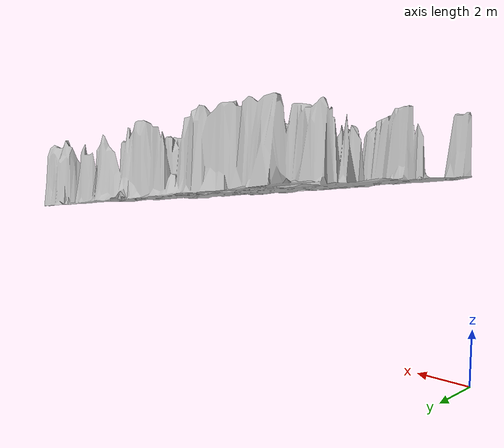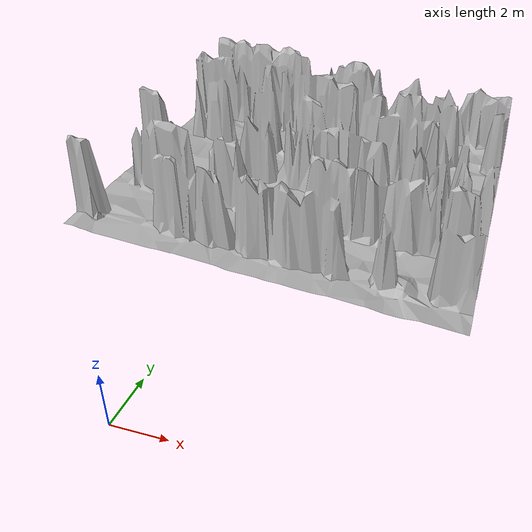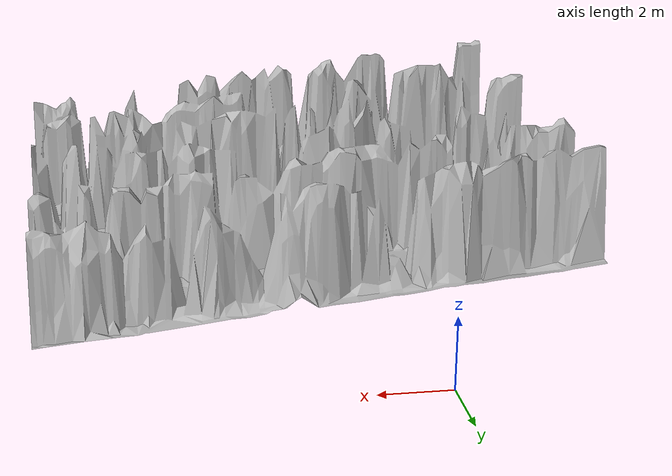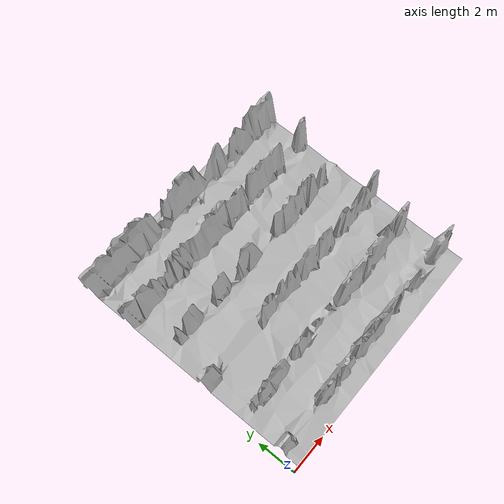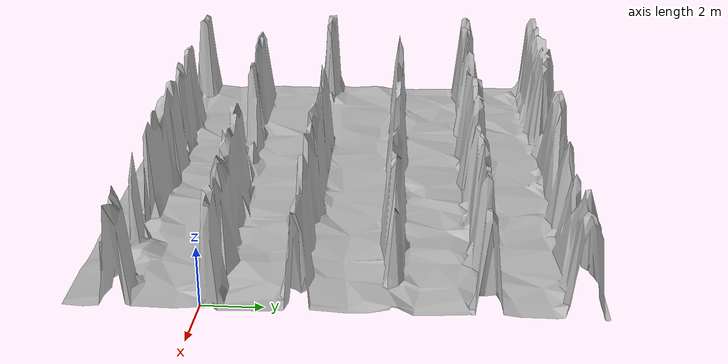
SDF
<?xml version="1.0" ?>
<sdf version="1.10">
    <model name="map_110_70">
        <link name="map_110_70_link">
            <visual name="map_110_70_visual">
                <geometry>
                    <mesh>
                        <uri>meshes/visual/map_110_70.obj</uri>
                    </mesh>
                </geometry>
            </visual>
            <collision name="map_110_70_collision">
                <surface>
                    <friction>
                        <ode>
                            <mu>2.316343837943928</mu>
                            <mu2>2.316343837943928</mu2>
                        </ode>
                        <bullet>
                            <friction>2.316343837943928</friction>
                            <friction2>2.316343837943928</friction2>
                        </bullet>
                    </friction>
                </surface>
                <geometry>
                    <mesh>
                        <uri>meshes/visual/map_110_70.obj</uri>
                    </mesh>
                </geometry>
            </collision>
        </link>
        <static>True</static>
    </model>
</sdf>
